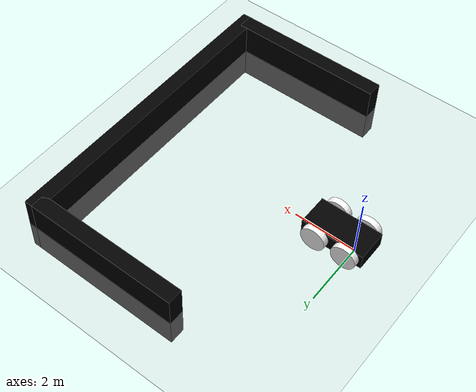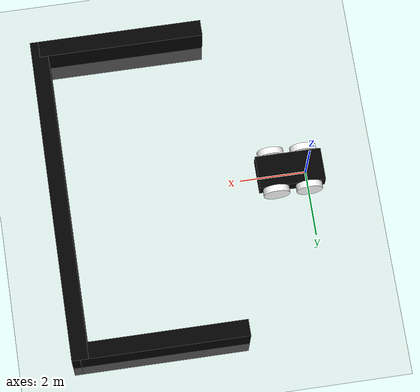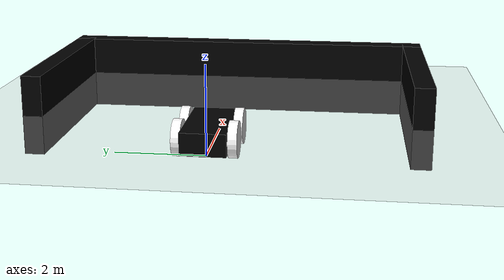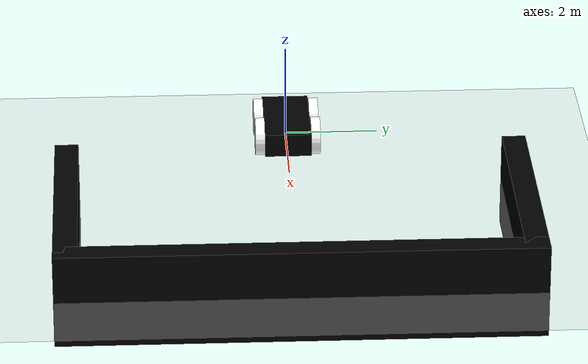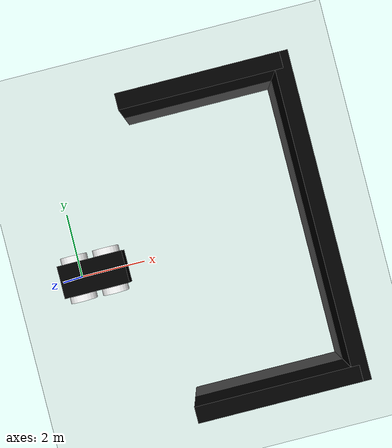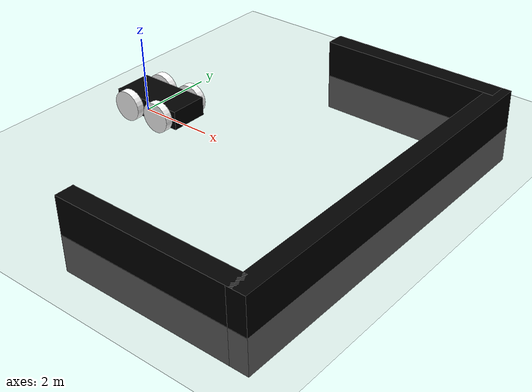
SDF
<?xml version="1.0" ?>
<sdf version="1.8">
    <world name="Moving_robot">
        <physics name="1ms" type="ignored">
            <max_step_size>0.001</max_step_size>
            <real_time_factor>1.0</real_time_factor>
        </physics>
        <plugin
            filename="libignition-gazebo-physics-system.so"
            name="ignition::gazebo::systems::Physics">
        </plugin>
        <plugin
            filename="libignition-gazebo-user-commands-system.so"
            name="ignition::gazebo::systems::UserCommands">
        </plugin>
        <plugin
            filename="libignition-gazebo-scene-broadcaster-system.so"
            name="ignition::gazebo::systems::SceneBroadcaster">
        </plugin>
        <plugin
            filename="libignition-gazebo-imu-system.so"
            name="ignition::gazebo::systems::Imu">
        </plugin>
        <plugin
            filename="libignition-gazebo-contact-system.so"
            name="ignition::gazebo::systems::Contact">
        </plugin>
        <plugin filename="libignition-gazebo-sensors-system.so"
                name="ignition::gazebo::systems::Sensors">
            <render_engine>ogre2</render_engine>
        </plugin>

        <light type="directional" name="sun">
            <cast_shadows>true</cast_shadows>
            <pose>0 0 10 0 0 0</pose>
            <diffuse>0.8 0.8 0.8 1</diffuse>
            <specular>0.2 0.2 0.2 1</specular>
            <attenuation>
                <range>1000</range>
                <constant>0.9</constant>
                <linear>0.01</linear>
                <quadratic>0.001</quadratic>
            </attenuation>
            <direction>-0.5 0.1 -0.9</direction>
        </light>

        <model name="ground_plane">
            <static>true</static>
            <link name="link">
                <collision name="collision">
                <geometry>
                    <plane>
                    <normal>0 0 1</normal>
                    </plane>
                </geometry>
                </collision>
                <visual name="visual">
                <geometry>
                    <plane>
                    <normal>0 0 1</normal>
                    <size>100 100</size>
                    </plane>
                </geometry>
                <material>
                    <ambient>0.8 0.8 0.8 1</ambient>
                    <diffuse>0.8 0.8 0.8 1</diffuse>
                    <specular>0.8 0.8 0.8 1</specular>
                </material>
                </visual>
            </link>
        </model>

        <model name='vehicle_black' canonical_link='chassis'>
            <pose relative_to='world'>0 0 0 0 0 0</pose>   <!--the pose is relative to the world by default-->

            <frame name="lidar_frame" attached_to='chassis'>
                <pose>0.8 0 0.5 0 0 0</pose>
            </frame>

            <link name='chassis'>
                <pose relative_to='__model__'>0.5 0 0.4 0 0 0</pose>
                <inertial> <!--inertial properties of the link mass, inertia matix-->
                    <mass>1.14395</mass>
                    <inertia>
                        <ixx>0.126164</ixx>
                        <ixy>0</ixy>
                        <ixz>0</ixz>
                        <iyy>0.416519</iyy>
                        <iyz>0</iyz>
                        <izz>0.481014</izz>
                    </inertia>
                </inertial>
                <visual name='visual'>
                    <geometry>
                        <box>
                            <size>2.0 1.0 0.5</size> <!--question: this size is in meter-->
                        </box>
                    </geometry>
                    <!--let's add color to our link-->
                    <material>
                        <ambient>0.0 0.0 0.0 1</ambient>
                        <diffuse>0.0 0.0 0.0 1</diffuse>
                        <specular>0.0 0.0 0.0 1</specular>
                    </material>
                </visual>
                <collision name='collision'> <!--todo: describe why we need the collision-->
                    <geometry>
                        <box>
                            <size>2.0 1.0 0.5</size>
                        </box>
                    </geometry>
                </collision>
                <sensor name="imu_sensor" type="imu">
                    <always_on>1</always_on>
                    <update_rate>1</update_rate>
                    <visualize>true</visualize>
                    <topic>imu</topic>
                </sensor>
                <sensor name='gpu_lidar' type='gpu_lidar'>"
                    <pose relative_to='lidar_frame'>0 0 0 0 0 0</pose>
                    <topic>lidar</topic>
                    <update_rate>10</update_rate>
                    <ray>
                        <scan>
                            <horizontal>
                                <samples>640</samples>
                                <resolution>1</resolution>
                                <min_angle>-1.396263</min_angle>
                                <max_angle>1.396263</max_angle>
                            </horizontal>
                            <vertical>
                                <samples>1</samples>
                                <resolution>0.01</resolution>
                                <min_angle>0</min_angle>
                                <max_angle>0</max_angle>
                            </vertical>
                        </scan>
                        <range>
                            <min>0.08</min>
                            <max>10.0</max>
                            <resolution>0.01</resolution>
                        </range>
                    </ray>
                    <always_on>1</always_on>
                    <visualize>true</visualize>
                </sensor>
            </link>
            <!--LEFT WHEEL-->
            <link name='left_wheel'>
                <pose relative_to="chassis">-0.5 0.6 0 -1.5707 0 0</pose>
                <inertial>
                    <mass>1</mass>
                    <inertia>
                        <ixx>0.043333</ixx>
                        <ixy>0</ixy>
                        <ixz>0</ixz>
                        <iyy>0.043333</iyy>
                        <iyz>0</iyz>
                        <izz>0.08</izz>
                    </inertia>
                </inertial>
                <visual name='visual'>
                    <geometry>
                        <cylinder>
                            <radius>0.4</radius>
                            <length>0.2</length>
                        </cylinder>
                    </geometry>
                    <material>
                        <ambient>1.0 1.0 1.0 1</ambient>
                        <diffuse>1.0 1.0 1.0 1</diffuse>
                        <specular>1.0 1.0 1.0 1</specular>
                    </material>
                </visual>
                <collision name='collision'>
                    <geometry>
                        <cylinder>
                            <radius>0.4</radius>
                            <length>0.2</length>
                        </cylinder>
                    </geometry>
                </collision>
            </link>

            <!--LEFT WHEEL2-->
            <link name='left_wheel2'>
                <pose relative_to="chassis">0.5 0.6 0 -1.5707 0 0</pose>
                <inertial>
                    <mass>1</mass>
                    <inertia>
                        <ixx>0.043333</ixx>
                        <ixy>0</ixy>
                        <ixz>0</ixz>
                        <iyy>0.043333</iyy>
                        <iyz>0</iyz>
                        <izz>0.08</izz>
                    </inertia>
                </inertial>
                <visual name='visual'>
                    <geometry>
                        <cylinder>
                            <radius>0.4</radius>
                            <length>0.2</length>
                        </cylinder>
                    </geometry>
                    <material>
                        <ambient>1.0 1.0 1.0 1</ambient>
                        <diffuse>1.0 1.0 1.0 1</diffuse>
                        <specular>1.0 1.0 1.0 1</specular>
                    </material>
                </visual>
                <collision name='collision'>
                    <geometry>
                        <cylinder>
                            <radius>0.4</radius>
                            <length>0.2</length>
                        </cylinder>
                    </geometry>
                </collision>
            </link>

            <!--RIGHT WHEEL-->
            <link name='right_wheel'>
                <pose relative_to="chassis">-0.5 -0.6 0 -1.5707 0 0</pose> <!--angles are in radian-->
                <inertial>
                    <mass>1</mass>
                    <inertia>
                        <ixx>0.043333</ixx>
                        <ixy>0</ixy>
                        <ixz>0</ixz>
                        <iyy>0.043333</iyy>
                        <iyz>0</iyz>
                        <izz>0.08</izz>
                    </inertia>
                </inertial>
                <visual name='visual'>
                    <geometry>
                        <cylinder>
                            <radius>0.4</radius>
                            <length>0.2</length>
                        </cylinder>
                    </geometry>
                    <material>
                        <ambient>1.0 1.0 1.0 1</ambient>
                        <diffuse>1.0 1.0 1.0 1</diffuse>
                        <specular>1.0 1.0 1.0 1</specular>
                    </material>
                </visual>
                <collision name='collision'>
                    <geometry>
                        <cylinder>
                            <radius>0.4</radius>
                            <length>0.2</length>
                        </cylinder>
                    </geometry>
                </collision>
            </link>

            <!--RIGHT WHEEL2-->
            <link name='right_wheel2'>
                <pose relative_to="chassis">0.5 -0.6 0 -1.5707 0 0</pose> <!--angles are in radian-->
                <inertial>
                    <mass>1</mass>
                    <inertia>
                        <ixx>0.043333</ixx>
                        <ixy>0</ixy>
                        <ixz>0</ixz>
                        <iyy>0.043333</iyy>
                        <iyz>0</iyz>
                        <izz>0.08</izz>
                    </inertia>
                </inertial>
                <visual name='visual'>
                    <geometry>
                        <cylinder>
                            <radius>0.4</radius>
                            <length>0.2</length>
                        </cylinder>
                    </geometry>
                    <material>
                        <ambient>1.0 1.0 1.0 1</ambient>
                        <diffuse>1.0 1.0 1.0 1</diffuse>
                        <specular>1.0 1.0 1.0 1</specular>
                    </material>
                </visual>
                <collision name='collision'>
                    <geometry>
                        <cylinder>
                            <radius>0.4</radius>
                            <length>0.2</length>
                        </cylinder>
                    </geometry>
                </collision>
            </link>

            <frame name="caster_frame" attached_to='chassis'>
                <pose>0.8 0 -0.2 0 0 0</pose>
            </frame>

            <!--LEFT WHEEL JOINT-->
            <joint name='left_wheel_joint' type='revolute'>
                <pose relative_to='left_wheel'/>
                <parent>chassis</parent>
                <child>left_wheel</child>
                <axis>
                    <xyz expressed_in='__model__'>0 1 0</xyz> <!--can be defined as any frame or even arbitrary frames-->
                    <limit>
                        <lower>-1.79769e+308</lower>    <!--negative infinity-->
                        <upper>1.79769e+308</upper>     <!--positive infinity-->
                    </limit>
                </axis>
            </joint>

            <!--LEFT WHEEL2 JOINT-->
            <joint name='left_wheel_joint2' type='revolute'>
                <pose relative_to='left_wheel2'/>
                <parent>chassis</parent>
                <child>left_wheel2</child>
                <axis>
                    <xyz expressed_in='__model__'>0 1 0</xyz> <!--can be defined as any frame or even arbitrary frames-->
                    <limit>
                        <lower>-1.79769e+308</lower>    <!--negative infinity-->
                        <upper>1.79769e+308</upper>     <!--positive infinity-->
                    </limit>
                </axis>
            </joint>

            <!--RIGHT WHEEL JOINT-->
            <joint name='right_wheel_joint' type='revolute'>
                <pose relative_to='right_wheel'/>
                <parent>chassis</parent>
                <child>right_wheel</child>
                <axis>
                    <xyz expressed_in='__model__'>0 1 0</xyz>
                    <limit>
                        <lower>-1.79769e+308</lower>    <!--negative infinity-->
                        <upper>1.79769e+308</upper>     <!--positive infinity-->
                    </limit>
                </axis>
            </joint>

            <!--RIGHT WHEEL2 JOINT-->
            <joint name='right_wheel_joint2' type='revolute'>
                <pose relative_to='right_wheel2'/>
                <parent>chassis</parent>
                <child>right_wheel2</child>
                <axis>
                    <xyz expressed_in='__model__'>0 1 0</xyz>
                    <limit>
                        <lower>-1.79769e+308</lower>    <!--negative infinity-->
                        <upper>1.79769e+308</upper>     <!--positive infinity-->
                    </limit>
                </axis>
            </joint>

            <!-- DIFF DRIVE PLUGIN -->
            <plugin
                filename="libignition-gazebo-diff-drive-system.so"
                name="ignition::gazebo::systems::DiffDrive">
                <left_joint>left_wheel_joint</left_joint>
                <right_joint>right_wheel_joint</right_joint>
                <wheel_separation>1.2</wheel_separation>
                <wheel_radius>0.4</wheel_radius>
                <odom_publish_frequency>1</odom_publish_frequency>
                <topic>cmd_vel</topic>
            </plugin>

            <!-- Moving Forward-->
            <plugin filename="libignition-gazebo-triggered-publisher-system.so"
                    name="ignition::gazebo::systems::TriggeredPublisher">
                <input type="ignition.msgs.Int32" topic="/keyboard/keypress">
                    <match field="data">16777235</match>
                </input>
                <output type="ignition.msgs.Twist" topic="/cmd_vel">
                    linear: {x: 0.5}, angular: {z: 0.0}
                </output>
            </plugin>

            <!-- Moving Backward-->
            <plugin filename="libignition-gazebo-triggered-publisher-system.so"
                    name="ignition::gazebo::systems::TriggeredPublisher">
                <input type="ignition.msgs.Int32" topic="/keyboard/keypress">
                    <match field="data">16777237</match>
                </input>
                <output type="ignition.msgs.Twist" topic="/cmd_vel">
                    linear: {x: -0.5}, angular: {z: 0.0}
                </output>
            </plugin>

            <!-- Rotating right-->
            <plugin filename="libignition-gazebo-triggered-publisher-system.so"
                    name="ignition::gazebo::systems::TriggeredPublisher">
                <input type="ignition.msgs.Int32" topic="/keyboard/keypress">
                    <match field="data">16777236</match>
                </input>
                <output type="ignition.msgs.Twist" topic="/cmd_vel">
                    linear: {x: 0.0}, angular: {z: -0.5}
                </output>
            </plugin>

            <!--Rotating left-->
            <plugin filename="libignition-gazebo-triggered-publisher-system.so"
                    name="ignition::gazebo::systems::TriggeredPublisher">
                <input type="ignition.msgs.Int32" topic="/keyboard/keypress">
                    <match field="data">16777234</match>
                </input>
                <output type="ignition.msgs.Twist" topic="/cmd_vel">
                    linear: {x: 0.0}, angular: {z: 0.5}
                </output>
            </plugin>

            <!--FORWARD WHEELS-->
            <plugin
                filename="gz-sim-diff-drive-system"
                name="gz::sim::systems::DiffDrive">
                <left_joint>left_wheel_joint2</left_joint>
                <right_joint>right_wheel_joint2</right_joint>
                <wheel_separation>1.2</wheel_separation>
                <wheel_radius>0.4</wheel_radius>
                <odom_publish_frequency>1</odom_publish_frequency>
                <topic>cmd_vel</topic>
            </plugin>

            <!-- Rotating right-->
            <plugin filename="libignition-gazebo-triggered-publisher-system.so"
                    name="ignition::gazebo::systems::TriggeredPublisher">
                <input type="ignition.msgs.Int32" topic="/keyboard/keypress">
                    <match field="data">16777234</match>
                </input>
                <output type="ignition.msgs.Twist" topic="/cmd_vel">
                    linear: {x: 0.0}, angular: {z: 0.5}
                </output>
            </plugin>

            <!--Rotating left-->
            <plugin filename="libignition-gazebo-triggered-publisher-system.so"
                    name="ignition::gazebo::systems::TriggeredPublisher">
                <input type="ignition.msgs.Int32" topic="/keyboard/keypress">
                    <match field="data">16777236</match>
                </input>
                <output type="ignition.msgs.Twist" topic="/cmd_vel">
                    linear: {x: 0.0}, angular: {z: -0.5}
                </output>
            </plugin>
        </model>

        <model name='C_Shaped_Wall'>
            <static>true</static>
            <!-- Adjust the pose as needed -->
            <pose>5 0 0 0 0 0</pose><!-- pose relative to the world -->

            <!-- Link from wall1 -->
            <link name='wall1_box'>
                <pose>0 4.75 0 0 0 -1.5707</pose>
                <visual name='visual'>
                    <geometry>
                        <box>
                            <size>0.5 5.0 2.0</size>
                        </box>
                    </geometry>
                    <material>
                        <ambient>0.0 0.0 0.0 1</ambient>
                        <diffuse>0.0 0.0 0.0 1</diffuse>
                        <specular>0.0 0.0 0.0 1</specular>
                    </material>
                </visual>
                <collision name='collision'>
                    <geometry>
                        <box>
                            <size>0.5 10.0 2.0</size>
                        </box>
                    </geometry>
                </collision>
                <sensor name='sensor_contact' type='contact'>
                    <contact>
                        <collision>collision</collision>
                    </contact>
                </sensor>
            </link>

            <!-- Link from wall2 -->
            <link name='wall2_box'>
                <pose>0 -4.75 0 0 0 -1.5707</pose>
                <visual name='visual'>
                    <geometry>
                        <box>
                            <size>0.5 5.0 2.0</size>
                        </box>
                    </geometry>
                    <material>
                        <ambient>0.0 0.0 0.0 1</ambient>
                        <diffuse>0.0 0.0 0.0 1</diffuse>
                        <specular>0.0 0.0 0.0 1</specular>
                    </material>
                </visual>
                <collision name='collision'>
                    <geometry>
                        <box>
                            <size>0.5 10.0 2.0</size>
                        </box>
                    </geometry>
                </collision>
            </link>

            <!-- Link from wall3 -->
            <link name='wall3_box'>
                <pose>2.5 0 0 0 0 0</pose>
                <visual name='visual'>
                    <geometry>
                        <box>
                            <size>0.5 10.0 2.0</size>
                        </box>
                    </geometry>
                    <material>
                        <ambient>0.0 0.0 0.0 1</ambient>
                        <diffuse>0.0 0.0 0.0 1</diffuse>
                        <specular>0.0 0.0 0.0 1</specular>
                    </material>
                </visual>
                <collision name='collision'>
                    <geometry>
                        <box>
                            <size>0.5 10.0 2.0</size>
                        </box>
                    </geometry>
                </collision>
                <sensor name='sensor_contact' type='contact'>
                    <contact>
                        <collision>collision</collision>
                    </contact>
                </sensor>
            </link>
        </model>
    </world>
</sdf>
